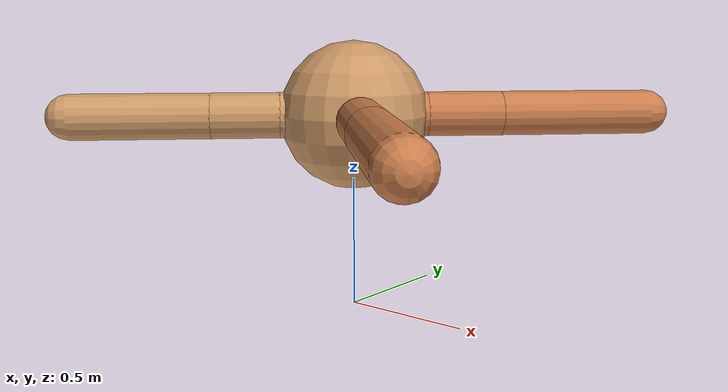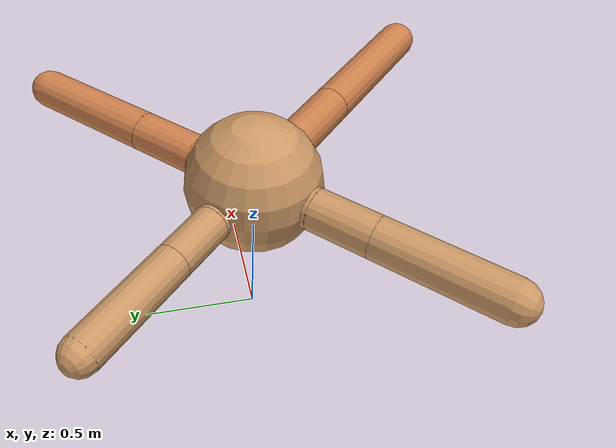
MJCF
<?xml version="1.0" ?>
<mujoco model="ant">

	<compiler angle="degree" coordinate="local" inertiafromgeom="true"/>

	<option integrator="RK4" timestep="0.01"/>

	<custom>

		<numeric data="0.0 0.0 0.55 1.0 0.0 0.0 0.0 0.0 1.0 0.0 -1.0 0.0 -1.0 0.0 1.0" name="init_qpos"/>

	</custom>

	<default>

		<joint armature="1" damping="1" limited="true"/>

		<geom conaffinity="0" condim="3" density="5.0" friction="1.5 0.1 0.1" margin="0.01" rgba="0.8 0.6 0.4 1"/>

	</default>

	<worldbody>

		<body name="torso" pos="0 0 0.75">

			<geom name="torso_geom" pos="0 0 0" size="0.2840014066881978" type="sphere"/>

			<!--joint armature="0" damping="0" limited="false" margin="0.01" name="root" pos="0 0 0" type="free"/-->

			<body name="front_left_leg" pos="0 0 0">

				<geom fromto="0 0 0 0.2 0.2 0" name="aux_1_geom" size="0.08589494691185028" type="capsule" rgba=".8 .5 .3 1"/>

				<body name="aux_1" pos="0.2 0.2 0">

					<joint axis="0 0 1" name="hip_1" pos="0.0 0.0 0.0" range="-40 40" type="hinge"/>

					<geom fromto="0 0 0 0.20615029312572922 0.20615029312572922 0" name="left_leg_geom" size="0.08589494691185028" type="capsule" rgba=".8 .5 .3 1"/>

					<body pos="0.20615029312572922 0.20615029312572922 0" name="front_left_foot">

						<joint axis="-1 1 0" name="ankle_1" pos="0.0 0.0 0.0" range="30 100" type="hinge"/>

						<geom fromto="0 0 0 0.41230058625145843 0.41230058625145843 0" name="left_ankle_geom" size="0.08589494691185028" type="capsule" rgba=".8 .5 .3 1"/>

					</body>

				</body>

			</body>

			<body name="front_right_leg" pos="0 0 0">

				<geom fromto="0 0 0 -0.2 0.2 0" name="aux_2_geom" size="0.07649693484489771" type="capsule"/>

				<body name="aux_2" pos="-0.2 0.2 0">

					<joint axis="0 0 1" name="hip_2" pos="0.0 0.0 0.0" range="-40 40" type="hinge"/>

					<geom fromto="0 0 0 -0.16389962411668538 0.16389962411668538 0" name="right_leg_geom" size="0.07649693484489771" type="capsule"/>

					<body pos="-0.16389962411668538 0.16389962411668538 0" name="front_right_foot">

						<joint axis="1 1 0" name="ankle_2" pos="0.0 0.0 0.0" range="-100 -30" type="hinge"/>

						<geom fromto="0 0 0 -0.32779924823337075 0.32779924823337075 0" name="right_ankle_geom" size="0.07649693484489771" type="capsule"/>

					</body>

				</body>

			</body>

			<body name="left_back_leg" pos="0 0 0">

				<geom fromto="0 0 0 -0.2 -0.2 0" name="aux_3_geom" size="0.08704418903913279" type="capsule"/>

				<body name="aux_3" pos="-0.2 -0.2 0">

					<joint axis="0 0 1" name="hip_3" pos="0.0 0.0 0.0" range="-40 40" type="hinge"/>

					<geom fromto="0 0 0 -0.18409889971733936 -0.18409889971733936 0" name="back_leg_geom" size="0.08704418903913279" type="capsule"/>

					<body pos="-0.18409889971733936 -0.18409889971733936 0" name="left_back_foot">

						<joint axis="-1 1 0" name="ankle_3" pos="0.0 0.0 0.0" range="-100 -30" type="hinge"/>

						<geom fromto="0 0 0 -0.36819779943467873 -0.36819779943467873 0" name="third_ankle_geom" size="0.08704418903913279" type="capsule"/>

					</body>

				</body>

			</body>

			<body name="right_back_leg" pos="0 0 0">

				<geom fromto="0 0 0 0.2 -0.2 0" name="aux_4_geom" size="0.08836202754896764" type="capsule" rgba=".8 .5 .3 1"/>

				<body name="aux_4" pos="0.2 -0.2 0">

					<joint axis="0 0 1" name="hip_4" pos="0.0 0.0 0.0" range="-40 40" type="hinge"/>

					<geom fromto="0 0 0 0.24695681591969745 -0.24695681591969745 0" name="rightback_leg_geom" size="0.08836202754896764" type="capsule" rgba=".8 .5 .3 1"/>

					<body pos="0.24695681591969745 -0.24695681591969745 0" name="right_back_foot">

						<joint axis="1 1 0" name="ankle_4" pos="0.0 0.0 0.0" range="30 100" type="hinge"/>

						<geom fromto="0 0 0 0.4939136318393949 -0.4939136318393949 0" name="fourth_ankle_geom" size="0.08836202754896764" type="capsule" rgba=".8 .5 .3 1"/>

					</body>

				</body>

			</body>

		</body>

	</worldbody>

	<actuator>

		<motor ctrllimited="true" ctrlrange="-1.0 1.0" joint="hip_4" gear="150"/>

		<motor ctrllimited="true" ctrlrange="-1.0 1.0" joint="ankle_4" gear="150"/>

		<motor ctrllimited="true" ctrlrange="-1.0 1.0" joint="hip_1" gear="150"/>

		<motor ctrllimited="true" ctrlrange="-1.0 1.0" joint="ankle_1" gear="150"/>

		<motor ctrllimited="true" ctrlrange="-1.0 1.0" joint="hip_2" gear="150"/>

		<motor ctrllimited="true" ctrlrange="-1.0 1.0" joint="ankle_2" gear="150"/>

		<motor ctrllimited="true" ctrlrange="-1.0 1.0" joint="hip_3" gear="150"/>

		<motor ctrllimited="true" ctrlrange="-1.0 1.0" joint="ankle_3" gear="150"/>

	</actuator>

</mujoco>
